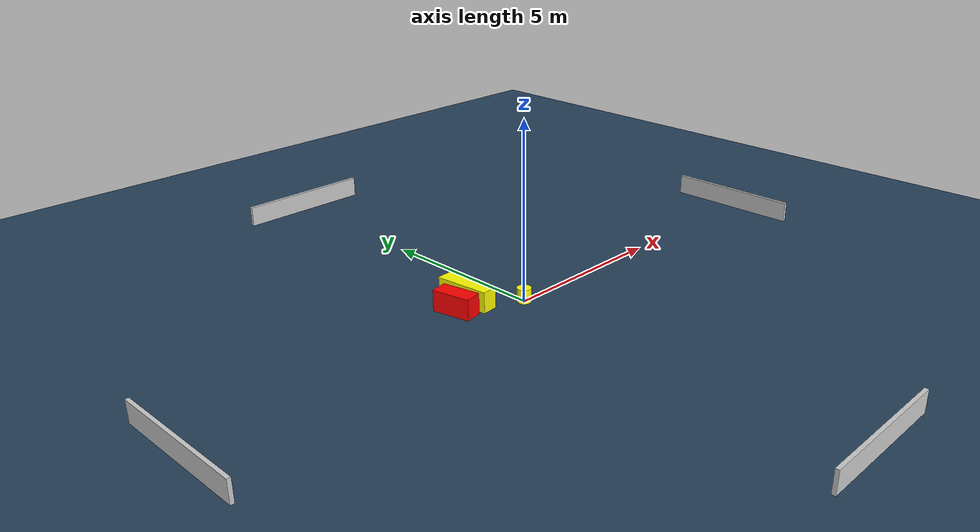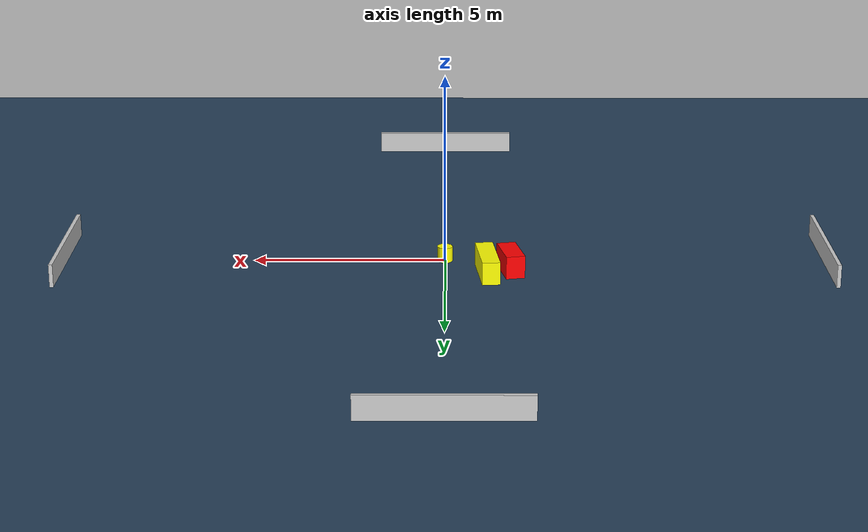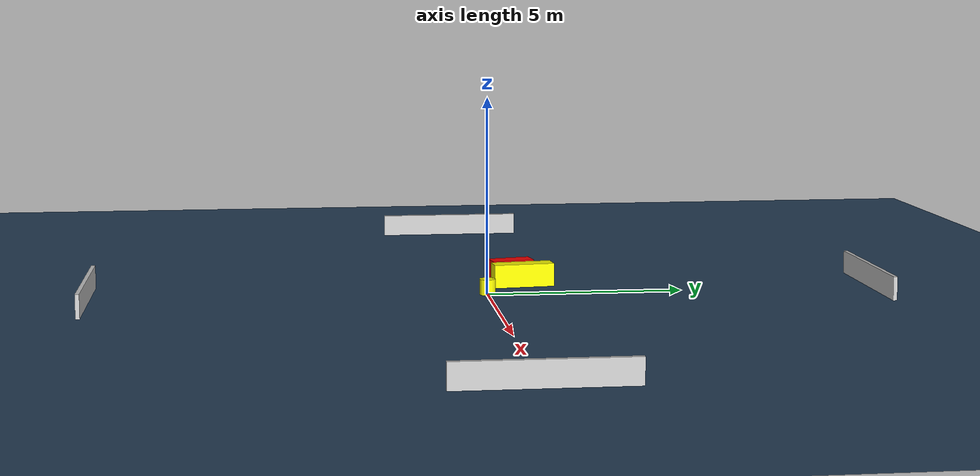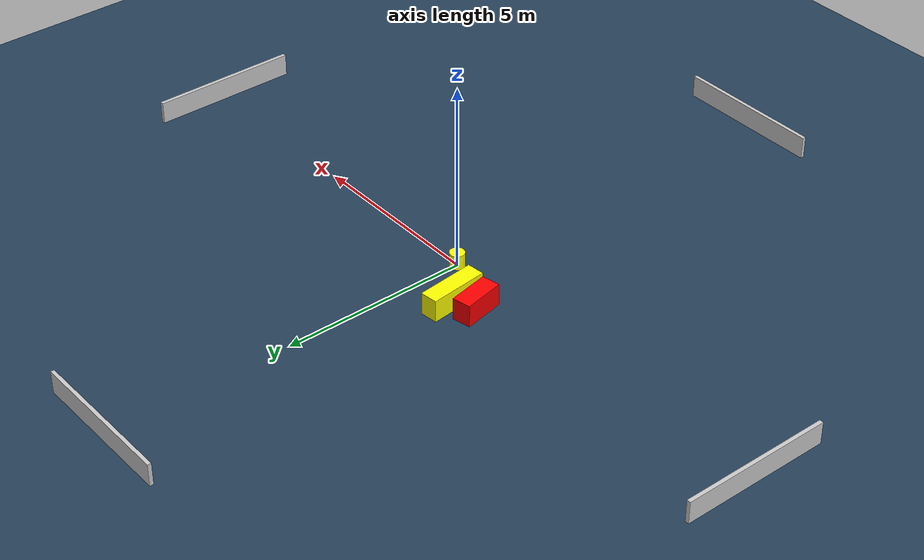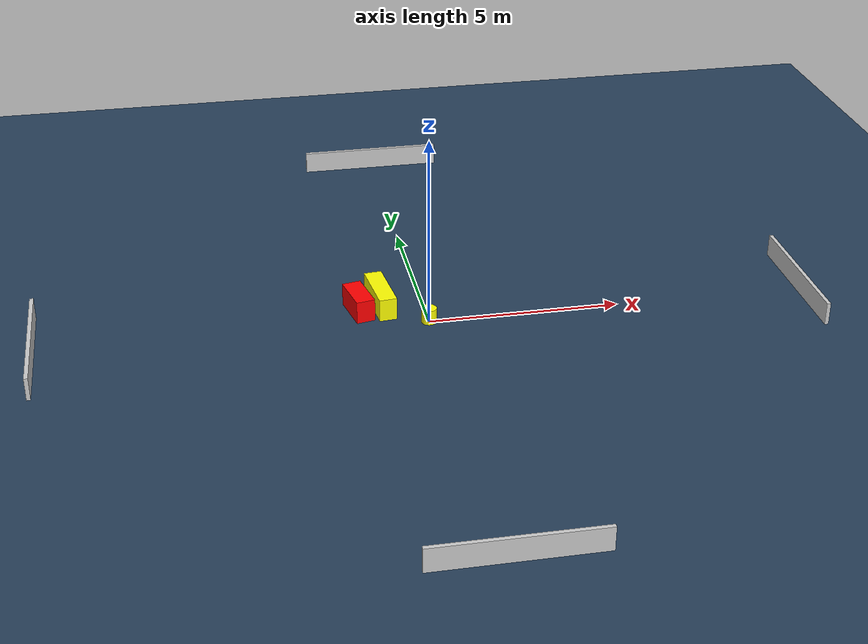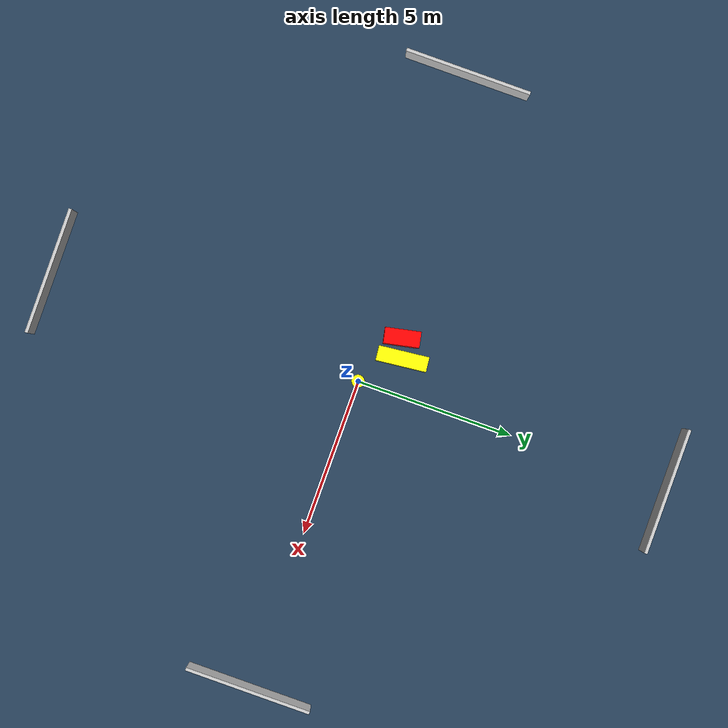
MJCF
<?xml version="1.0" ?>
<mujoco model="generated_environment">
  <option timestep="0.01" integrator="RK4" cone="elliptic"/>
  <default>
    <geom density="1"/>
  </default>
  <asset>
    <texture builtin="gradient" height="3072" name="skybox" rgb1="0.3 0.5 0.7" rgb2="0 0 0" type="skybox" width="512"/>
    <texture builtin="checker" height="300" name="groundplane" rgb1="0.2 0.3 0.4" rgb2="0.1 0.2 0.3" type="2d" width="300"/>
    <material name="groundplane" reflectance="0.2" texrepeat="5 5" texture="groundplane"/>
  </asset>
  <worldbody>
    <light dir="0 0 -1" directional="true" pos="0 0 1.5"/>
    <geom condim="3" friction="0.5 0.005 0.001" material="groundplane" name="floor" pos="0 0 0" size="0 0 0.05" type="plane"/>
    <body name="walls">
      <geom name="wall_1" condim="4" pos="-10.0 0.0 0.3" rgba="0.800000011920929 0.800000011920929 0.800000011920929 1.0" size="0.05 2.0 0.3" type="box"/>
      <geom name="wall_2" condim="4" pos="10.0 0.0 0.3" rgba="0.800000011920929 0.800000011920929 0.800000011920929 1.0" size="0.05 2.0 0.3" type="box"/>
      <geom name="wall_3" condim="4" pos="0.0 -10.0 0.3" rgba="0.800000011920929 0.800000011920929 0.800000011920929 1.0" size="2.0 0.05 0.3" type="box"/>
      <geom name="wall_4" condim="4" pos="0.0 10.0 0.3" rgba="0.800000011920929 0.800000011920929 0.800000011920929 1.0" size="2.0 0.05 0.3" type="box"/>
    </body>
    <body name="robot">
      <joint name="joint_x" type="slide" pos="0 0 0" axis="1 0 0"/>
      <joint name="joint_y" type="slide" pos="0 0 0" axis="0 1 0"/>
      <geom name="robot" type="cylinder" pos="0.0 0.0 0.2" size="0.2 0.2 0.0" mass="5.0" friction="1.0 0.005 0.0001" condim="4" rgba="1.0 1.0 0.0 1.0"/>
    </body>
    <body name="obstacle_1_movable">
      <geom name="obstacle_1_movable" condim="4" pos="-1.0983249521299296 1.0455261107508311 0.3" euler="0 0 96.06665223544367" friction="0.0 0.005 0.001" rgba="1.0 1.0 0.0 1.0" size="0.7895485502030182 0.23340068565174119 0.3" type="box" mass="0.1"/>
      <joint type="free"/>
    </body>
    <body name="obstacle_2_static">
      <geom name="obstacle_2_static" condim="4" pos="-1.7060497778015622 0.8204081967962248 0.3" euler="0 0 281.54602409788964" friction="0.0 0.005 0.001" rgba="1.0 0.0 0.0 1.0" size="0.5576054614101256 0.2478072841693376 0.3" type="box"/>
    </body>
  </worldbody>
  <actuator>
    <motor name="actuator_x" joint="joint_x" gear="1" ctrlrange="-1 1"/>
    <motor name="actuator_y" joint="joint_y" gear="1" ctrlrange="-1 1"/>
  </actuator>
</mujoco>
